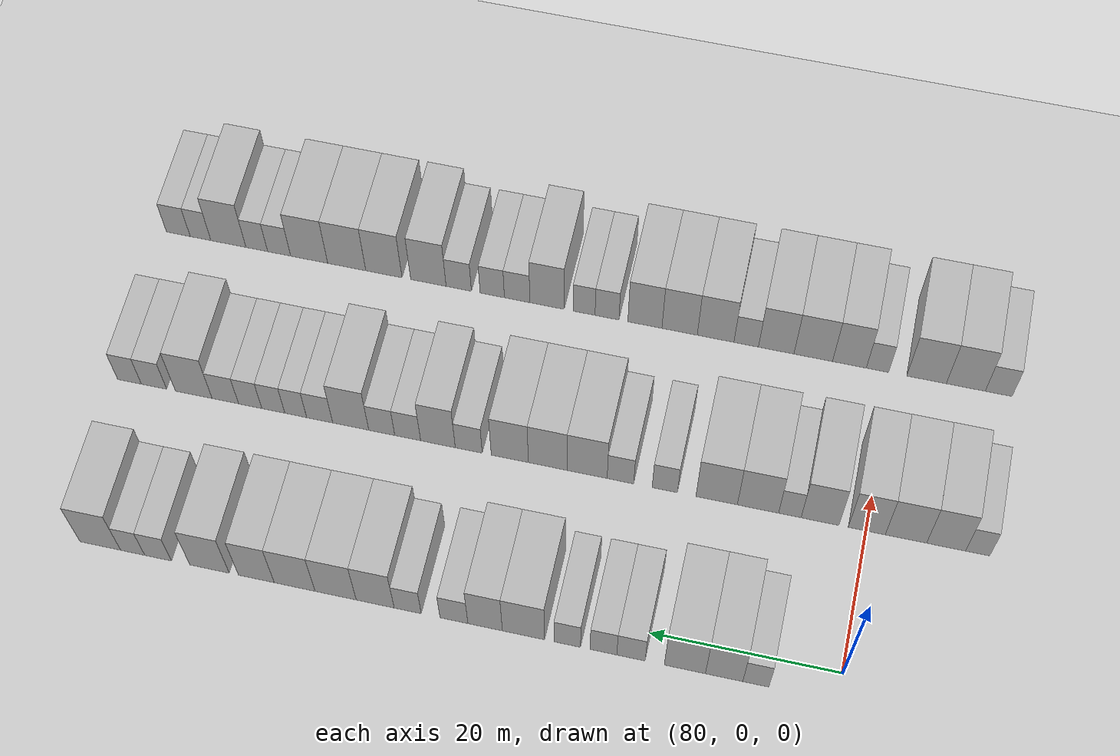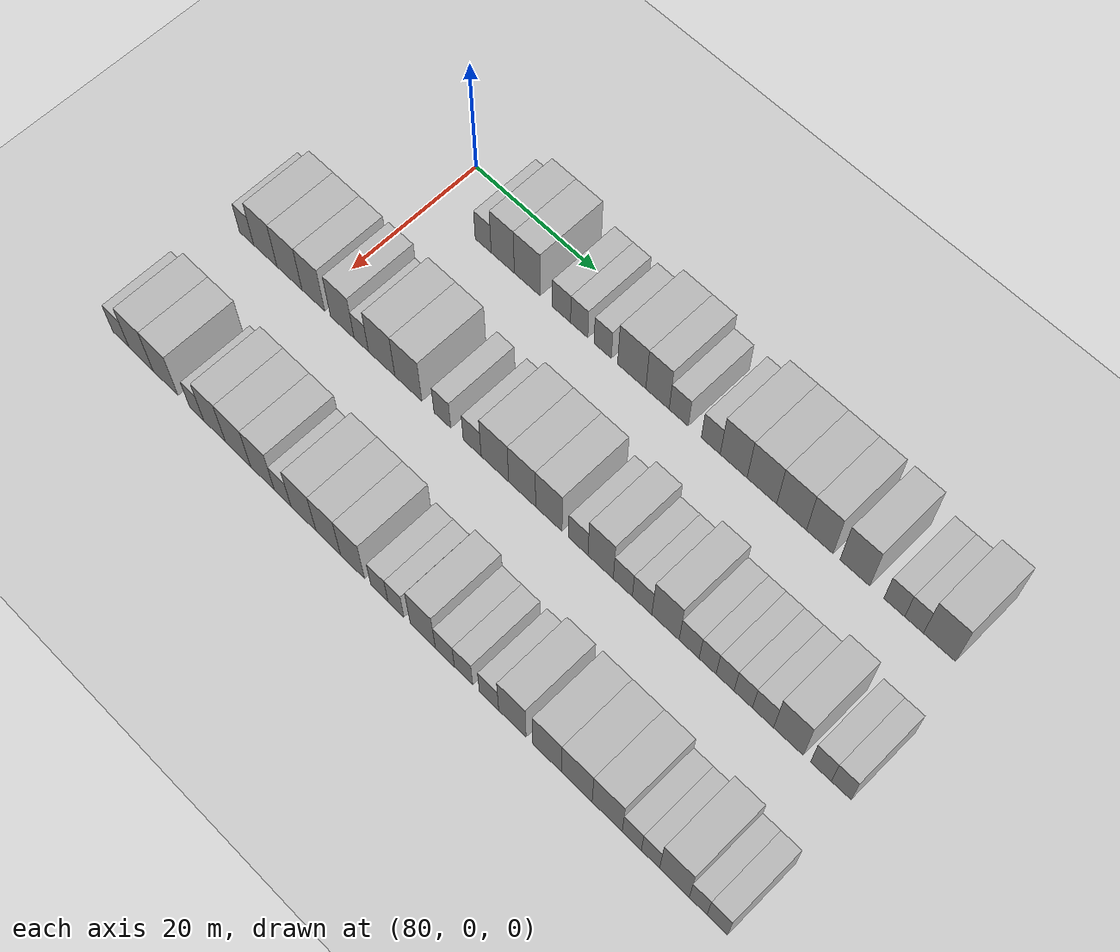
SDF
<sdf version="1.6">
 <world name="default">
  <include>
   <name>ground_plane_2</name>
   <uri>model://HANNAS_ground_plane</uri>
   <pose>100 0 0  0 0 0</pose>
  </include>
  <model name="building_612">
   <static>1</static>
   <pose>82.0000 8.4522 0 0.000000 0.000000 0.000000</pose>
   <link name="link">
    <pose>0 0 3.00 0 0 0</pose>
    <collision name="collision"><geometry><box><size>10.0000 2.6888 6.0000</size></box></geometry></collision>
    <visual name="visual">
     <cast_shadows>0</cast_shadows>
     <geometry><box><size>10.0000 2.6888 6.0000</size></box></geometry>
     <material>
      <script>
       <uri>model://HANNAS_wall/materials/scripts</uri>
       <uri>model://HANNAS_wall/materials/textures</uri>
       <name>vrc/HANNAS_wall</name>
      </script>
     </material>
    </visual>
   </link>
  </model>
  <model name="building_613">
   <static>1</static>
   <pose>82.0000 11.7281 0 0.000000 0.000000 0.000000</pose>
   <link name="link">
    <pose>0 0 4.50 0 0 0</pose>
    <collision name="collision"><geometry><box><size>10.0000 3.8630 9.0000</size></box></geometry></collision>
    <visual name="visual">
     <cast_shadows>0</cast_shadows>
     <geometry><box><size>10.0000 3.8630 9.0000</size></box></geometry>
     <material>
      <script>
       <uri>model://HANNAS_wall/materials/scripts</uri>
       <uri>model://HANNAS_wall/materials/textures</uri>
       <name>vrc/HANNAS_wall</name>
      </script>
     </material>
    </visual>
   </link>
  </model>
  <model name="building_614">
   <static>1</static>
   <pose>82.0000 15.7890 0 0.000000 0.000000 0.000000</pose>
   <link name="link">
    <pose>0 0 4.50 0 0 0</pose>
    <collision name="collision"><geometry><box><size>10.0000 4.2587 9.0000</size></box></geometry></collision>
    <visual name="visual">
     <cast_shadows>0</cast_shadows>
     <geometry><box><size>10.0000 4.2587 9.0000</size></box></geometry>
     <material>
      <script>
       <uri>model://HANNAS_wall/materials/scripts</uri>
       <uri>model://HANNAS_wall/materials/textures</uri>
       <name>vrc/HANNAS_wall</name>
      </script>
     </material>
    </visual>
   </link>
  </model>
  <model name="building_615">
   <static>1</static>
   <pose>82.0000 21.3951 0 0.000000 0.000000 0.000000</pose>
   <link name="link">
    <pose>0 0 3.00 0 0 0</pose>
    <collision name="collision"><geometry><box><size>10.0000 2.9534 6.0000</size></box></geometry></collision>
    <visual name="visual">
     <cast_shadows>0</cast_shadows>
     <geometry><box><size>10.0000 2.9534 6.0000</size></box></geometry>
     <material>
      <script>
       <uri>model://HANNAS_wall/materials/scripts</uri>
       <uri>model://HANNAS_wall/materials/textures</uri>
       <name>vrc/HANNAS_wall</name>
      </script>
     </material>
    </visual>
   </link>
  </model>
  <model name="building_616">
   <static>1</static>
   <pose>82.0000 24.2642 0 0.000000 0.000000 0.000000</pose>
   <link name="link">
    <pose>0 0 3.00 0 0 0</pose>
    <collision name="collision"><geometry><box><size>10.0000 2.7849 6.0000</size></box></geometry></collision>
    <visual name="visual">
     <cast_shadows>0</cast_shadows>
     <geometry><box><size>10.0000 2.7849 6.0000</size></box></geometry>
     <material>
      <script>
       <uri>model://HANNAS_wall/materials/scripts</uri>
       <uri>model://HANNAS_wall/materials/textures</uri>
       <name>vrc/HANNAS_wall</name>
      </script>
     </material>
    </visual>
   </link>
  </model>
  <model name="building_617">
   <static>1</static>
   <pose>82.0000 28.0379 0 0.000000 0.000000 0.000000</pose>
   <link name="link">
    <pose>0 0 3.00 0 0 0</pose>
    <collision name="collision"><geometry><box><size>10.0000 2.7624 6.0000</size></box></geometry></collision>
    <visual name="visual">
     <cast_shadows>0</cast_shadows>
     <geometry><box><size>10.0000 2.7624 6.0000</size></box></geometry>
     <material>
      <script>
       <uri>model://HANNAS_wall/materials/scripts</uri>
       <uri>model://HANNAS_wall/materials/textures</uri>
       <name>vrc/HANNAS_wall</name>
      </script>
     </material>
    </visual>
   </link>
  </model>
  <model name="building_618">
   <static>1</static>
   <pose>82.0000 32.6429 0 0.000000 0.000000 0.000000</pose>
   <link name="link">
    <pose>0 0 4.50 0 0 0</pose>
    <collision name="collision"><geometry><box><size>10.0000 4.4476 9.0000</size></box></geometry></collision>
    <visual name="visual">
     <cast_shadows>0</cast_shadows>
     <geometry><box><size>10.0000 4.4476 9.0000</size></box></geometry>
     <material>
      <script>
       <uri>model://HANNAS_wall/materials/scripts</uri>
       <uri>model://HANNAS_wall/materials/textures</uri>
       <name>vrc/HANNAS_wall</name>
      </script>
     </material>
    </visual>
   </link>
  </model>
  <model name="building_619">
   <static>1</static>
   <pose>82.0000 36.6875 0 0.000000 0.000000 0.000000</pose>
   <link name="link">
    <pose>0 0 4.50 0 0 0</pose>
    <collision name="collision"><geometry><box><size>10.0000 3.6415 9.0000</size></box></geometry></collision>
    <visual name="visual">
     <cast_shadows>0</cast_shadows>
     <geometry><box><size>10.0000 3.6415 9.0000</size></box></geometry>
     <material>
      <script>
       <uri>model://HANNAS_wall/materials/scripts</uri>
       <uri>model://HANNAS_wall/materials/textures</uri>
       <name>vrc/HANNAS_wall</name>
      </script>
     </material>
    </visual>
   </link>
  </model>
  <model name="building_620">
   <static>1</static>
   <pose>82.0000 39.9862 0 0.000000 0.000000 0.000000</pose>
   <link name="link">
    <pose>0 0 3.00 0 0 0</pose>
    <collision name="collision"><geometry><box><size>10.0000 2.9561 6.0000</size></box></geometry></collision>
    <visual name="visual">
     <cast_shadows>0</cast_shadows>
     <geometry><box><size>10.0000 2.9561 6.0000</size></box></geometry>
     <material>
      <script>
       <uri>model://HANNAS_wall/materials/scripts</uri>
       <uri>model://HANNAS_wall/materials/textures</uri>
       <name>vrc/HANNAS_wall</name>
      </script>
     </material>
    </visual>
   </link>
  </model>
  <model name="building_621">
   <static>1</static>
   <pose>82.0000 44.9042 0 0.000000 0.000000 0.000000</pose>
   <link name="link">
    <pose>0 0 3.00 0 0 0</pose>
    <collision name="collision"><geometry><box><size>10.0000 2.8798 6.0000</size></box></geometry></collision>
    <visual name="visual">
     <cast_shadows>0</cast_shadows>
     <geometry><box><size>10.0000 2.8798 6.0000</size></box></geometry>
     <material>
      <script>
       <uri>model://HANNAS_wall/materials/scripts</uri>
       <uri>model://HANNAS_wall/materials/textures</uri>
       <name>vrc/HANNAS_wall</name>
      </script>
     </material>
    </visual>
   </link>
  </model>
  <model name="building_622">
   <static>1</static>
   <pose>82.0000 48.3745 0 0.000000 0.000000 0.000000</pose>
   <link name="link">
    <pose>0 0 4.50 0 0 0</pose>
    <collision name="collision"><geometry><box><size>10.0000 4.0608 9.0000</size></box></geometry></collision>
    <visual name="visual">
     <cast_shadows>0</cast_shadows>
     <geometry><box><size>10.0000 4.0608 9.0000</size></box></geometry>
     <material>
      <script>
       <uri>model://HANNAS_wall/materials/scripts</uri>
       <uri>model://HANNAS_wall/materials/textures</uri>
       <name>vrc/HANNAS_wall</name>
      </script>
     </material>
    </visual>
   </link>
  </model>
  <model name="building_623">
   <static>1</static>
   <pose>82.0000 52.6140 0 0.000000 0.000000 0.000000</pose>
   <link name="link">
    <pose>0 0 4.50 0 0 0</pose>
    <collision name="collision"><geometry><box><size>10.0000 4.4183 9.0000</size></box></geometry></collision>
    <visual name="visual">
     <cast_shadows>0</cast_shadows>
     <geometry><box><size>10.0000 4.4183 9.0000</size></box></geometry>
     <material>
      <script>
       <uri>model://HANNAS_wall/materials/scripts</uri>
       <uri>model://HANNAS_wall/materials/textures</uri>
       <name>vrc/HANNAS_wall</name>
      </script>
     </material>
    </visual>
   </link>
  </model>
  <model name="building_624">
   <static>1</static>
   <pose>82.0000 57.0221 0 0.000000 0.000000 0.000000</pose>
   <link name="link">
    <pose>0 0 4.50 0 0 0</pose>
    <collision name="collision"><geometry><box><size>10.0000 4.3977 9.0000</size></box></geometry></collision>
    <visual name="visual">
     <cast_shadows>0</cast_shadows>
     <geometry><box><size>10.0000 4.3977 9.0000</size></box></geometry>
     <material>
      <script>
       <uri>model://HANNAS_wall/materials/scripts</uri>
       <uri>model://HANNAS_wall/materials/textures</uri>
       <name>vrc/HANNAS_wall</name>
      </script>
     </material>
    </visual>
   </link>
  </model>
  <model name="building_625">
   <static>1</static>
   <pose>82.0000 61.1562 0 0.000000 0.000000 0.000000</pose>
   <link name="link">
    <pose>0 0 4.50 0 0 0</pose>
    <collision name="collision"><geometry><box><size>10.0000 3.8706 9.0000</size></box></geometry></collision>
    <visual name="visual">
     <cast_shadows>0</cast_shadows>
     <geometry><box><size>10.0000 3.8706 9.0000</size></box></geometry>
     <material>
      <script>
       <uri>model://HANNAS_wall/materials/scripts</uri>
       <uri>model://HANNAS_wall/materials/textures</uri>
       <name>vrc/HANNAS_wall</name>
      </script>
     </material>
    </visual>
   </link>
  </model>
  <model name="building_626">
   <static>1</static>
   <pose>82.0000 66.2286 0 0.000000 0.000000 0.000000</pose>
   <link name="link">
    <pose>0 0 4.50 0 0 0</pose>
    <collision name="collision"><geometry><box><size>10.0000 4.2742 9.0000</size></box></geometry></collision>
    <visual name="visual">
     <cast_shadows>0</cast_shadows>
     <geometry><box><size>10.0000 4.2742 9.0000</size></box></geometry>
     <material>
      <script>
       <uri>model://HANNAS_wall/materials/scripts</uri>
       <uri>model://HANNAS_wall/materials/textures</uri>
       <name>vrc/HANNAS_wall</name>
      </script>
     </material>
    </visual>
   </link>
  </model>
  <model name="building_627">
   <static>1</static>
   <pose>82.0000 71.8278 0 0.000000 0.000000 0.000000</pose>
   <link name="link">
    <pose>0 0 3.00 0 0 0</pose>
    <collision name="collision"><geometry><box><size>10.0000 2.9242 6.0000</size></box></geometry></collision>
    <visual name="visual">
     <cast_shadows>0</cast_shadows>
     <geometry><box><size>10.0000 2.9242 6.0000</size></box></geometry>
     <material>
      <script>
       <uri>model://HANNAS_wall/materials/scripts</uri>
       <uri>model://HANNAS_wall/materials/textures</uri>
       <name>vrc/HANNAS_wall</name>
      </script>
     </material>
    </visual>
   </link>
  </model>
  <model name="building_628">
   <static>1</static>
   <pose>82.0000 74.6081 0 0.000000 0.000000 0.000000</pose>
   <link name="link">
    <pose>0 0 3.00 0 0 0</pose>
    <collision name="collision"><geometry><box><size>10.0000 2.6364 6.0000</size></box></geometry></collision>
    <visual name="visual">
     <cast_shadows>0</cast_shadows>
     <geometry><box><size>10.0000 2.6364 6.0000</size></box></geometry>
     <material>
      <script>
       <uri>model://HANNAS_wall/materials/scripts</uri>
       <uri>model://HANNAS_wall/materials/textures</uri>
       <name>vrc/HANNAS_wall</name>
      </script>
     </material>
    </visual>
   </link>
  </model>
  <model name="building_629">
   <static>1</static>
   <pose>82.0000 78.1593 0 0.000000 0.000000 0.000000</pose>
   <link name="link">
    <pose>0 0 4.50 0 0 0</pose>
    <collision name="collision"><geometry><box><size>10.0000 4.4660 9.0000</size></box></geometry></collision>
    <visual name="visual">
     <cast_shadows>0</cast_shadows>
     <geometry><box><size>10.0000 4.4660 9.0000</size></box></geometry>
     <material>
      <script>
       <uri>model://HANNAS_wall/materials/scripts</uri>
       <uri>model://HANNAS_wall/materials/textures</uri>
       <name>vrc/HANNAS_wall</name>
      </script>
     </material>
    </visual>
   </link>
  </model>
  <model name="building_788">
   <static>1</static>
   <pose>101.0000 -11.7467 0 0.000000 0.000000 0.000000</pose>
   <link name="link">
    <pose>0 0 3.00 0 0 0</pose>
    <collision name="collision"><geometry><box><size>10.0000 2.5338 6.0000</size></box></geometry></collision>
    <visual name="visual">
     <cast_shadows>0</cast_shadows>
     <geometry><box><size>10.0000 2.5338 6.0000</size></box></geometry>
     <material>
      <script>
       <uri>model://HANNAS_wall/materials/scripts</uri>
       <uri>model://HANNAS_wall/materials/textures</uri>
       <name>vrc/HANNAS_wall</name>
      </script>
     </material>
    </visual>
   </link>
  </model>
  <model name="building_789">
   <static>1</static>
   <pose>101.0000 -8.4242 0 0.000000 0.000000 0.000000</pose>
   <link name="link">
    <pose>0 0 4.50 0 0 0</pose>
    <collision name="collision"><geometry><box><size>10.0000 4.1113 9.0000</size></box></geometry></collision>
    <visual name="visual">
     <cast_shadows>0</cast_shadows>
     <geometry><box><size>10.0000 4.1113 9.0000</size></box></geometry>
     <material>
      <script>
       <uri>model://HANNAS_wall/materials/scripts</uri>
       <uri>model://HANNAS_wall/materials/textures</uri>
       <name>vrc/HANNAS_wall</name>
      </script>
     </material>
    </visual>
   </link>
  </model>
  <model name="building_790">
   <static>1</static>
   <pose>101.0000 -4.1806 0 0.000000 0.000000 0.000000</pose>
   <link name="link">
    <pose>0 0 4.50 0 0 0</pose>
    <collision name="collision"><geometry><box><size>10.0000 4.3757 9.0000</size></box></geometry></collision>
    <visual name="visual">
     <cast_shadows>0</cast_shadows>
     <geometry><box><size>10.0000 4.3757 9.0000</size></box></geometry>
     <material>
      <script>
       <uri>model://HANNAS_wall/materials/scripts</uri>
       <uri>model://HANNAS_wall/materials/textures</uri>
       <name>vrc/HANNAS_wall</name>
      </script>
     </material>
    </visual>
   </link>
  </model>
  <model name="building_791">
   <static>1</static>
   <pose>101.0000 -0.0316 0 0.000000 0.000000 0.000000</pose>
   <link name="link">
    <pose>0 0 4.50 0 0 0</pose>
    <collision name="collision"><geometry><box><size>10.0000 3.9223 9.0000</size></box></geometry></collision>
    <visual name="visual">
     <cast_shadows>0</cast_shadows>
     <geometry><box><size>10.0000 3.9223 9.0000</size></box></geometry>
     <material>
      <script>
       <uri>model://HANNAS_wall/materials/scripts</uri>
       <uri>model://HANNAS_wall/materials/textures</uri>
       <name>vrc/HANNAS_wall</name>
      </script>
     </material>
    </visual>
   </link>
  </model>
  <model name="building_792">
   <static>1</static>
   <pose>101.0000 4.9466 0 0.000000 0.000000 0.000000</pose>
   <link name="link">
    <pose>0 0 4.50 0 0 0</pose>
    <collision name="collision"><geometry><box><size>10.0000 4.0341 9.0000</size></box></geometry></collision>
    <visual name="visual">
     <cast_shadows>0</cast_shadows>
     <geometry><box><size>10.0000 4.0341 9.0000</size></box></geometry>
     <material>
      <script>
       <uri>model://HANNAS_wall/materials/scripts</uri>
       <uri>model://HANNAS_wall/materials/textures</uri>
       <name>vrc/HANNAS_wall</name>
      </script>
     </material>
    </visual>
   </link>
  </model>
  <model name="building_793">
   <static>1</static>
   <pose>101.0000 8.1683 0 0.000000 0.000000 0.000000</pose>
   <link name="link">
    <pose>0 0 3.00 0 0 0</pose>
    <collision name="collision"><geometry><box><size>10.0000 2.4094 6.0000</size></box></geometry></collision>
    <visual name="visual">
     <cast_shadows>0</cast_shadows>
     <geometry><box><size>10.0000 2.4094 6.0000</size></box></geometry>
     <material>
      <script>
       <uri>model://HANNAS_wall/materials/scripts</uri>
       <uri>model://HANNAS_wall/materials/textures</uri>
       <name>vrc/HANNAS_wall</name>
      </script>
     </material>
    </visual>
   </link>
  </model>
  <model name="building_794">
   <static>1</static>
   <pose>101.0000 11.5841 0 0.000000 0.000000 0.000000</pose>
   <link name="link">
    <pose>0 0 4.50 0 0 0</pose>
    <collision name="collision"><geometry><box><size>10.0000 4.4220 9.0000</size></box></geometry></collision>
    <visual name="visual">
     <cast_shadows>0</cast_shadows>
     <geometry><box><size>10.0000 4.4220 9.0000</size></box></geometry>
     <material>
      <script>
       <uri>model://HANNAS_wall/materials/scripts</uri>
       <uri>model://HANNAS_wall/materials/textures</uri>
       <name>vrc/HANNAS_wall</name>
      </script>
     </material>
    </visual>
   </link>
  </model>
  <model name="building_795">
   <static>1</static>
   <pose>101.0000 16.0269 0 0.000000 0.000000 0.000000</pose>
   <link name="link">
    <pose>0 0 4.50 0 0 0</pose>
    <collision name="collision"><geometry><box><size>10.0000 4.4636 9.0000</size></box></geometry></collision>
    <visual name="visual">
     <cast_shadows>0</cast_shadows>
     <geometry><box><size>10.0000 4.4636 9.0000</size></box></geometry>
     <material>
      <script>
       <uri>model://HANNAS_wall/materials/scripts</uri>
       <uri>model://HANNAS_wall/materials/textures</uri>
       <name>vrc/HANNAS_wall</name>
      </script>
     </material>
    </visual>
   </link>
  </model>
  <model name="building_796">
   <static>1</static>
   <pose>101.0000 21.6288 0 0.000000 0.000000 0.000000</pose>
   <link name="link">
    <pose>0 0 3.00 0 0 0</pose>
    <collision name="collision"><geometry><box><size>10.0000 2.7401 6.0000</size></box></geometry></collision>
    <visual name="visual">
     <cast_shadows>0</cast_shadows>
     <geometry><box><size>10.0000 2.7401 6.0000</size></box></geometry>
     <material>
      <script>
       <uri>model://HANNAS_wall/materials/scripts</uri>
       <uri>model://HANNAS_wall/materials/textures</uri>
       <name>vrc/HANNAS_wall</name>
      </script>
     </material>
    </visual>
   </link>
  </model>
  <model name="building_797">
   <static>1</static>
   <pose>101.0000 26.4400 0 0.000000 0.000000 0.000000</pose>
   <link name="link">
    <pose>0 0 3.00 0 0 0</pose>
    <collision name="collision"><geometry><box><size>10.0000 2.8825 6.0000</size></box></geometry></collision>
    <visual name="visual">
     <cast_shadows>0</cast_shadows>
     <geometry><box><size>10.0000 2.8825 6.0000</size></box></geometry>
     <material>
      <script>
       <uri>model://HANNAS_wall/materials/scripts</uri>
       <uri>model://HANNAS_wall/materials/textures</uri>
       <name>vrc/HANNAS_wall</name>
      </script>
     </material>
    </visual>
   </link>
  </model>
  <model name="building_798">
   <static>1</static>
   <pose>101.0000 30.0633 0 0.000000 0.000000 0.000000</pose>
   <link name="link">
    <pose>0 0 4.50 0 0 0</pose>
    <collision name="collision"><geometry><box><size>10.0000 4.3641 9.0000</size></box></geometry></collision>
    <visual name="visual">
     <cast_shadows>0</cast_shadows>
     <geometry><box><size>10.0000 4.3641 9.0000</size></box></geometry>
     <material>
      <script>
       <uri>model://HANNAS_wall/materials/scripts</uri>
       <uri>model://HANNAS_wall/materials/textures</uri>
       <name>vrc/HANNAS_wall</name>
      </script>
     </material>
    </visual>
   </link>
  </model>
  <model name="building_799">
   <static>1</static>
   <pose>101.0000 34.3633 0 0.000000 0.000000 0.000000</pose>
   <link name="link">
    <pose>0 0 4.50 0 0 0</pose>
    <collision name="collision"><geometry><box><size>10.0000 4.2359 9.0000</size></box></geometry></collision>
    <visual name="visual">
     <cast_shadows>0</cast_shadows>
     <geometry><box><size>10.0000 4.2359 9.0000</size></box></geometry>
     <material>
      <script>
       <uri>model://HANNAS_wall/materials/scripts</uri>
       <uri>model://HANNAS_wall/materials/textures</uri>
       <name>vrc/HANNAS_wall</name>
      </script>
     </material>
    </visual>
   </link>
  </model>
  <model name="building_800">
   <static>1</static>
   <pose>101.0000 38.5232 0 0.000000 0.000000 0.000000</pose>
   <link name="link">
    <pose>0 0 4.50 0 0 0</pose>
    <collision name="collision"><geometry><box><size>10.0000 4.0839 9.0000</size></box></geometry></collision>
    <visual name="visual">
     <cast_shadows>0</cast_shadows>
     <geometry><box><size>10.0000 4.0839 9.0000</size></box></geometry>
     <material>
      <script>
       <uri>model://HANNAS_wall/materials/scripts</uri>
       <uri>model://HANNAS_wall/materials/textures</uri>
       <name>vrc/HANNAS_wall</name>
      </script>
     </material>
    </visual>
   </link>
  </model>
  <model name="building_801">
   <static>1</static>
   <pose>101.0000 43.0505 0 0.000000 0.000000 0.000000</pose>
   <link name="link">
    <pose>0 0 3.00 0 0 0</pose>
    <collision name="collision"><geometry><box><size>10.0000 2.9705 6.0000</size></box></geometry></collision>
    <visual name="visual">
     <cast_shadows>0</cast_shadows>
     <geometry><box><size>10.0000 2.9705 6.0000</size></box></geometry>
     <material>
      <script>
       <uri>model://HANNAS_wall/materials/scripts</uri>
       <uri>model://HANNAS_wall/materials/textures</uri>
       <name>vrc/HANNAS_wall</name>
      </script>
     </material>
    </visual>
   </link>
  </model>
  <model name="building_802">
   <static>1</static>
   <pose>101.0000 46.4548 0 0.000000 0.000000 0.000000</pose>
   <link name="link">
    <pose>0 0 4.50 0 0 0</pose>
    <collision name="collision"><geometry><box><size>10.0000 3.8382 9.0000</size></box></geometry></collision>
    <visual name="visual">
     <cast_shadows>0</cast_shadows>
     <geometry><box><size>10.0000 3.8382 9.0000</size></box></geometry>
     <material>
      <script>
       <uri>model://HANNAS_wall/materials/scripts</uri>
       <uri>model://HANNAS_wall/materials/textures</uri>
       <name>vrc/HANNAS_wall</name>
      </script>
     </material>
    </visual>
   </link>
  </model>
  <model name="building_803">
   <static>1</static>
   <pose>101.0000 49.8082 0 0.000000 0.000000 0.000000</pose>
   <link name="link">
    <pose>0 0 3.00 0 0 0</pose>
    <collision name="collision"><geometry><box><size>10.0000 2.8686 6.0000</size></box></geometry></collision>
    <visual name="visual">
     <cast_shadows>0</cast_shadows>
     <geometry><box><size>10.0000 2.8686 6.0000</size></box></geometry>
     <material>
      <script>
       <uri>model://HANNAS_wall/materials/scripts</uri>
       <uri>model://HANNAS_wall/materials/textures</uri>
       <name>vrc/HANNAS_wall</name>
      </script>
     </material>
    </visual>
   </link>
  </model>
  <model name="building_804">
   <static>1</static>
   <pose>101.0000 52.6882 0 0.000000 0.000000 0.000000</pose>
   <link name="link">
    <pose>0 0 3.00 0 0 0</pose>
    <collision name="collision"><geometry><box><size>10.0000 2.8915 6.0000</size></box></geometry></collision>
    <visual name="visual">
     <cast_shadows>0</cast_shadows>
     <geometry><box><size>10.0000 2.8915 6.0000</size></box></geometry>
     <material>
      <script>
       <uri>model://HANNAS_wall/materials/scripts</uri>
       <uri>model://HANNAS_wall/materials/textures</uri>
       <name>vrc/HANNAS_wall</name>
      </script>
     </material>
    </visual>
   </link>
  </model>
  <model name="building_805">
   <static>1</static>
   <pose>101.0000 56.1517 0 0.000000 0.000000 0.000000</pose>
   <link name="link">
    <pose>0 0 4.50 0 0 0</pose>
    <collision name="collision"><geometry><box><size>10.0000 4.0355 9.0000</size></box></geometry></collision>
    <visual name="visual">
     <cast_shadows>0</cast_shadows>
     <geometry><box><size>10.0000 4.0355 9.0000</size></box></geometry>
     <material>
      <script>
       <uri>model://HANNAS_wall/materials/scripts</uri>
       <uri>model://HANNAS_wall/materials/textures</uri>
       <name>vrc/HANNAS_wall</name>
      </script>
     </material>
    </visual>
   </link>
  </model>
  <model name="building_806">
   <static>1</static>
   <pose>101.0000 59.6257 0 0.000000 0.000000 0.000000</pose>
   <link name="link">
    <pose>0 0 3.00 0 0 0</pose>
    <collision name="collision"><geometry><box><size>10.0000 2.9125 6.0000</size></box></geometry></collision>
    <visual name="visual">
     <cast_shadows>0</cast_shadows>
     <geometry><box><size>10.0000 2.9125 6.0000</size></box></geometry>
     <material>
      <script>
       <uri>model://HANNAS_wall/materials/scripts</uri>
       <uri>model://HANNAS_wall/materials/textures</uri>
       <name>vrc/HANNAS_wall</name>
      </script>
     </material>
    </visual>
   </link>
  </model>
  <model name="building_807">
   <static>1</static>
   <pose>101.0000 62.3129 0 0.000000 0.000000 0.000000</pose>
   <link name="link">
    <pose>0 0 3.00 0 0 0</pose>
    <collision name="collision"><geometry><box><size>10.0000 2.4618 6.0000</size></box></geometry></collision>
    <visual name="visual">
     <cast_shadows>0</cast_shadows>
     <geometry><box><size>10.0000 2.4618 6.0000</size></box></geometry>
     <material>
      <script>
       <uri>model://HANNAS_wall/materials/scripts</uri>
       <uri>model://HANNAS_wall/materials/textures</uri>
       <name>vrc/HANNAS_wall</name>
      </script>
     </material>
    </visual>
   </link>
  </model>
  <model name="building_808">
   <static>1</static>
   <pose>101.0000 64.8359 0 0.000000 0.000000 0.000000</pose>
   <link name="link">
    <pose>0 0 3.00 0 0 0</pose>
    <collision name="collision"><geometry><box><size>10.0000 2.5842 6.0000</size></box></geometry></collision>
    <visual name="visual">
     <cast_shadows>0</cast_shadows>
     <geometry><box><size>10.0000 2.5842 6.0000</size></box></geometry>
     <material>
      <script>
       <uri>model://HANNAS_wall/materials/scripts</uri>
       <uri>model://HANNAS_wall/materials/textures</uri>
       <name>vrc/HANNAS_wall</name>
      </script>
     </material>
    </visual>
   </link>
  </model>
  <model name="building_809">
   <static>1</static>
   <pose>101.0000 67.4386 0 0.000000 0.000000 0.000000</pose>
   <link name="link">
    <pose>0 0 3.00 0 0 0</pose>
    <collision name="collision"><geometry><box><size>10.0000 2.6211 6.0000</size></box></geometry></collision>
    <visual name="visual">
     <cast_shadows>0</cast_shadows>
     <geometry><box><size>10.0000 2.6211 6.0000</size></box></geometry>
     <material>
      <script>
       <uri>model://HANNAS_wall/materials/scripts</uri>
       <uri>model://HANNAS_wall/materials/textures</uri>
       <name>vrc/HANNAS_wall</name>
      </script>
     </material>
    </visual>
   </link>
  </model>
  <model name="building_810">
   <static>1</static>
   <pose>101.0000 70.2480 0 0.000000 0.000000 0.000000</pose>
   <link name="link">
    <pose>0 0 3.00 0 0 0</pose>
    <collision name="collision"><geometry><box><size>10.0000 2.9977 6.0000</size></box></geometry></collision>
    <visual name="visual">
     <cast_shadows>0</cast_shadows>
     <geometry><box><size>10.0000 2.9977 6.0000</size></box></geometry>
     <material>
      <script>
       <uri>model://HANNAS_wall/materials/scripts</uri>
       <uri>model://HANNAS_wall/materials/textures</uri>
       <name>vrc/HANNAS_wall</name>
      </script>
     </material>
    </visual>
   </link>
  </model>
  <model name="building_811">
   <static>1</static>
   <pose>101.0000 73.8276 0 0.000000 0.000000 0.000000</pose>
   <link name="link">
    <pose>0 0 4.50 0 0 0</pose>
    <collision name="collision"><geometry><box><size>10.0000 4.1614 9.0000</size></box></geometry></collision>
    <visual name="visual">
     <cast_shadows>0</cast_shadows>
     <geometry><box><size>10.0000 4.1614 9.0000</size></box></geometry>
     <material>
      <script>
       <uri>model://HANNAS_wall/materials/scripts</uri>
       <uri>model://HANNAS_wall/materials/textures</uri>
       <name>vrc/HANNAS_wall</name>
      </script>
     </material>
    </visual>
   </link>
  </model>
  <model name="building_812">
   <static>1</static>
   <pose>101.0000 78.3442 0 0.000000 0.000000 0.000000</pose>
   <link name="link">
    <pose>0 0 3.00 0 0 0</pose>
    <collision name="collision"><geometry><box><size>10.0000 2.8718 6.0000</size></box></geometry></collision>
    <visual name="visual">
     <cast_shadows>0</cast_shadows>
     <geometry><box><size>10.0000 2.8718 6.0000</size></box></geometry>
     <material>
      <script>
       <uri>model://HANNAS_wall/materials/scripts</uri>
       <uri>model://HANNAS_wall/materials/textures</uri>
       <name>vrc/HANNAS_wall</name>
      </script>
     </material>
    </visual>
   </link>
  </model>
  <model name="building_813">
   <static>1</static>
   <pose>101.0000 81.1378 0 0.000000 0.000000 0.000000</pose>
   <link name="link">
    <pose>0 0 3.00 0 0 0</pose>
    <collision name="collision"><geometry><box><size>10.0000 2.7154 6.0000</size></box></geometry></collision>
    <visual name="visual">
     <cast_shadows>0</cast_shadows>
     <geometry><box><size>10.0000 2.7154 6.0000</size></box></geometry>
     <material>
      <script>
       <uri>model://HANNAS_wall/materials/scripts</uri>
       <uri>model://HANNAS_wall/materials/textures</uri>
       <name>vrc/HANNAS_wall</name>
      </script>
     </material>
    </visual>
   </link>
  </model>
  <model name="building_966">
   <static>1</static>
   <pose>120.0000 -11.6476 0 0.000000 0.000000 0.000000</pose>
   <link name="link">
    <pose>0 0 3.00 0 0 0</pose>
    <collision name="collision"><geometry><box><size>10.0000 2.9346 6.0000</size></box></geometry></collision>
    <visual name="visual">
     <cast_shadows>0</cast_shadows>
     <geometry><box><size>10.0000 2.9346 6.0000</size></box></geometry>
     <material>
      <script>
       <uri>model://HANNAS_wall/materials/scripts</uri>
       <uri>model://HANNAS_wall/materials/textures</uri>
       <name>vrc/HANNAS_wall</name>
      </script>
     </material>
    </visual>
   </link>
  </model>
  <model name="building_967">
   <static>1</static>
   <pose>120.0000 -8.0524 0 0.000000 0.000000 0.000000</pose>
   <link name="link">
    <pose>0 0 4.50 0 0 0</pose>
    <collision name="collision"><geometry><box><size>10.0000 4.2559 9.0000</size></box></geometry></collision>
    <visual name="visual">
     <cast_shadows>0</cast_shadows>
     <geometry><box><size>10.0000 4.2559 9.0000</size></box></geometry>
     <material>
      <script>
       <uri>model://HANNAS_wall/materials/scripts</uri>
       <uri>model://HANNAS_wall/materials/textures</uri>
       <name>vrc/HANNAS_wall</name>
      </script>
     </material>
    </visual>
   </link>
  </model>
  <model name="building_968">
   <static>1</static>
   <pose>120.0000 -3.7504 0 0.000000 0.000000 0.000000</pose>
   <link name="link">
    <pose>0 0 4.50 0 0 0</pose>
    <collision name="collision"><geometry><box><size>10.0000 4.3481 9.0000</size></box></geometry></collision>
    <visual name="visual">
     <cast_shadows>0</cast_shadows>
     <geometry><box><size>10.0000 4.3481 9.0000</size></box></geometry>
     <material>
      <script>
       <uri>model://HANNAS_wall/materials/scripts</uri>
       <uri>model://HANNAS_wall/materials/textures</uri>
       <name>vrc/HANNAS_wall</name>
      </script>
     </material>
    </visual>
   </link>
  </model>
  <model name="building_969">
   <static>1</static>
   <pose>120.0000 1.6539 0 0.000000 0.000000 0.000000</pose>
   <link name="link">
    <pose>0 0 3.00 0 0 0</pose>
    <collision name="collision"><geometry><box><size>10.0000 2.4603 6.0000</size></box></geometry></collision>
    <visual name="visual">
     <cast_shadows>0</cast_shadows>
     <geometry><box><size>10.0000 2.4603 6.0000</size></box></geometry>
     <material>
      <script>
       <uri>model://HANNAS_wall/materials/scripts</uri>
       <uri>model://HANNAS_wall/materials/textures</uri>
       <name>vrc/HANNAS_wall</name>
      </script>
     </material>
    </visual>
   </link>
  </model>
  <model name="building_970">
   <static>1</static>
   <pose>120.0000 4.7565 0 0.000000 0.000000 0.000000</pose>
   <link name="link">
    <pose>0 0 4.50 0 0 0</pose>
    <collision name="collision"><geometry><box><size>10.0000 3.7449 9.0000</size></box></geometry></collision>
    <visual name="visual">
     <cast_shadows>0</cast_shadows>
     <geometry><box><size>10.0000 3.7449 9.0000</size></box></geometry>
     <material>
      <script>
       <uri>model://HANNAS_wall/materials/scripts</uri>
       <uri>model://HANNAS_wall/materials/textures</uri>
       <name>vrc/HANNAS_wall</name>
      </script>
     </material>
    </visual>
   </link>
  </model>
  <model name="building_971">
   <static>1</static>
   <pose>120.0000 8.7693 0 0.000000 0.000000 0.000000</pose>
   <link name="link">
    <pose>0 0 4.50 0 0 0</pose>
    <collision name="collision"><geometry><box><size>10.0000 4.2808 9.0000</size></box></geometry></collision>
    <visual name="visual">
     <cast_shadows>0</cast_shadows>
     <geometry><box><size>10.0000 4.2808 9.0000</size></box></geometry>
     <material>
      <script>
       <uri>model://HANNAS_wall/materials/scripts</uri>
       <uri>model://HANNAS_wall/materials/textures</uri>
       <name>vrc/HANNAS_wall</name>
      </script>
     </material>
    </visual>
   </link>
  </model>
  <model name="building_972">
   <static>1</static>
   <pose>120.0000 12.8876 0 0.000000 0.000000 0.000000</pose>
   <link name="link">
    <pose>0 0 4.50 0 0 0</pose>
    <collision name="collision"><geometry><box><size>10.0000 3.9557 9.0000</size></box></geometry></collision>
    <visual name="visual">
     <cast_shadows>0</cast_shadows>
     <geometry><box><size>10.0000 3.9557 9.0000</size></box></geometry>
     <material>
      <script>
       <uri>model://HANNAS_wall/materials/scripts</uri>
       <uri>model://HANNAS_wall/materials/textures</uri>
       <name>vrc/HANNAS_wall</name>
      </script>
     </material>
    </visual>
   </link>
  </model>
  <model name="building_973">
   <static>1</static>
   <pose>120.0000 16.2359 0 0.000000 0.000000 0.000000</pose>
   <link name="link">
    <pose>0 0 3.00 0 0 0</pose>
    <collision name="collision"><geometry><box><size>10.0000 2.7408 6.0000</size></box></geometry></collision>
    <visual name="visual">
     <cast_shadows>0</cast_shadows>
     <geometry><box><size>10.0000 2.7408 6.0000</size></box></geometry>
     <material>
      <script>
       <uri>model://HANNAS_wall/materials/scripts</uri>
       <uri>model://HANNAS_wall/materials/textures</uri>
       <name>vrc/HANNAS_wall</name>
      </script>
     </material>
    </visual>
   </link>
  </model>
  <model name="building_974">
   <static>1</static>
   <pose>120.0000 19.6628 0 0.000000 0.000000 0.000000</pose>
   <link name="link">
    <pose>0 0 4.50 0 0 0</pose>
    <collision name="collision"><geometry><box><size>10.0000 4.1131 9.0000</size></box></geometry></collision>
    <visual name="visual">
     <cast_shadows>0</cast_shadows>
     <geometry><box><size>10.0000 4.1131 9.0000</size></box></geometry>
     <material>
      <script>
       <uri>model://HANNAS_wall/materials/scripts</uri>
       <uri>model://HANNAS_wall/materials/textures</uri>
       <name>vrc/HANNAS_wall</name>
      </script>
     </material>
    </visual>
   </link>
  </model>
  <model name="building_975">
   <static>1</static>
   <pose>120.0000 23.7107 0 0.000000 0.000000 0.000000</pose>
   <link name="link">
    <pose>0 0 4.50 0 0 0</pose>
    <collision name="collision"><geometry><box><size>10.0000 3.9827 9.0000</size></box></geometry></collision>
    <visual name="visual">
     <cast_shadows>0</cast_shadows>
     <geometry><box><size>10.0000 3.9827 9.0000</size></box></geometry>
     <material>
      <script>
       <uri>model://HANNAS_wall/materials/scripts</uri>
       <uri>model://HANNAS_wall/materials/textures</uri>
       <name>vrc/HANNAS_wall</name>
      </script>
     </material>
    </visual>
   </link>
  </model>
  <model name="building_976">
   <static>1</static>
   <pose>120.0000 27.6254 0 0.000000 0.000000 0.000000</pose>
   <link name="link">
    <pose>0 0 4.50 0 0 0</pose>
    <collision name="collision"><geometry><box><size>10.0000 3.8466 9.0000</size></box></geometry></collision>
    <visual name="visual">
     <cast_shadows>0</cast_shadows>
     <geometry><box><size>10.0000 3.8466 9.0000</size></box></geometry>
     <material>
      <script>
       <uri>model://HANNAS_wall/materials/scripts</uri>
       <uri>model://HANNAS_wall/materials/textures</uri>
       <name>vrc/HANNAS_wall</name>
      </script>
     </material>
    </visual>
   </link>
  </model>
  <model name="building_977">
   <static>1</static>
   <pose>120.0000 31.9056 0 0.000000 0.000000 0.000000</pose>
   <link name="link">
    <pose>0 0 3.00 0 0 0</pose>
    <collision name="collision"><geometry><box><size>10.0000 2.7137 6.0000</size></box></geometry></collision>
    <visual name="visual">
     <cast_shadows>0</cast_shadows>
     <geometry><box><size>10.0000 2.7137 6.0000</size></box></geometry>
     <material>
      <script>
       <uri>model://HANNAS_wall/materials/scripts</uri>
       <uri>model://HANNAS_wall/materials/textures</uri>
       <name>vrc/HANNAS_wall</name>
      </script>
     </material>
    </visual>
   </link>
  </model>
  <model name="building_978">
   <static>1</static>
   <pose>120.0000 34.5085 0 0.000000 0.000000 0.000000</pose>
   <link name="link">
    <pose>0 0 3.00 0 0 0</pose>
    <collision name="collision"><geometry><box><size>10.0000 2.4922 6.0000</size></box></geometry></collision>
    <visual name="visual">
     <cast_shadows>0</cast_shadows>
     <geometry><box><size>10.0000 2.4922 6.0000</size></box></geometry>
     <material>
      <script>
       <uri>model://HANNAS_wall/materials/scripts</uri>
       <uri>model://HANNAS_wall/materials/textures</uri>
       <name>vrc/HANNAS_wall</name>
      </script>
     </material>
    </visual>
   </link>
  </model>
  <model name="building_979">
   <static>1</static>
   <pose>120.0000 38.7099 0 0.000000 0.000000 0.000000</pose>
   <link name="link">
    <pose>0 0 4.50 0 0 0</pose>
    <collision name="collision"><geometry><box><size>10.0000 3.9106 9.0000</size></box></geometry></collision>
    <visual name="visual">
     <cast_shadows>0</cast_shadows>
     <geometry><box><size>10.0000 3.9106 9.0000</size></box></geometry>
     <material>
      <script>
       <uri>model://HANNAS_wall/materials/scripts</uri>
       <uri>model://HANNAS_wall/materials/textures</uri>
       <name>vrc/HANNAS_wall</name>
      </script>
     </material>
    </visual>
   </link>
  </model>
  <model name="building_980">
   <static>1</static>
   <pose>120.0000 42.1282 0 0.000000 0.000000 0.000000</pose>
   <link name="link">
    <pose>0 0 3.00 0 0 0</pose>
    <collision name="collision"><geometry><box><size>10.0000 2.9260 6.0000</size></box></geometry></collision>
    <visual name="visual">
     <cast_shadows>0</cast_shadows>
     <geometry><box><size>10.0000 2.9260 6.0000</size></box></geometry>
     <material>
      <script>
       <uri>model://HANNAS_wall/materials/scripts</uri>
       <uri>model://HANNAS_wall/materials/textures</uri>
       <name>vrc/HANNAS_wall</name>
      </script>
     </material>
    </visual>
   </link>
  </model>
  <model name="building_981">
   <static>1</static>
   <pose>120.0000 44.9802 0 0.000000 0.000000 0.000000</pose>
   <link name="link">
    <pose>0 0 3.00 0 0 0</pose>
    <collision name="collision"><geometry><box><size>10.0000 2.7780 6.0000</size></box></geometry></collision>
    <visual name="visual">
     <cast_shadows>0</cast_shadows>
     <geometry><box><size>10.0000 2.7780 6.0000</size></box></geometry>
     <material>
      <script>
       <uri>model://HANNAS_wall/materials/scripts</uri>
       <uri>model://HANNAS_wall/materials/textures</uri>
       <name>vrc/HANNAS_wall</name>
      </script>
     </material>
    </visual>
   </link>
  </model>
  <model name="building_982">
   <static>1</static>
   <pose>120.0000 48.8260 0 0.000000 0.000000 0.000000</pose>
   <link name="link">
    <pose>0 0 3.00 0 0 0</pose>
    <collision name="collision"><geometry><box><size>10.0000 2.9135 6.0000</size></box></geometry></collision>
    <visual name="visual">
     <cast_shadows>0</cast_shadows>
     <geometry><box><size>10.0000 2.9135 6.0000</size></box></geometry>
     <material>
      <script>
       <uri>model://HANNAS_wall/materials/scripts</uri>
       <uri>model://HANNAS_wall/materials/textures</uri>
       <name>vrc/HANNAS_wall</name>
      </script>
     </material>
    </visual>
   </link>
  </model>
  <model name="building_983">
   <static>1</static>
   <pose>120.0000 52.3243 0 0.000000 0.000000 0.000000</pose>
   <link name="link">
    <pose>0 0 4.50 0 0 0</pose>
    <collision name="collision"><geometry><box><size>10.0000 4.0832 9.0000</size></box></geometry></collision>
    <visual name="visual">
     <cast_shadows>0</cast_shadows>
     <geometry><box><size>10.0000 4.0832 9.0000</size></box></geometry>
     <material>
      <script>
       <uri>model://HANNAS_wall/materials/scripts</uri>
       <uri>model://HANNAS_wall/materials/textures</uri>
       <name>vrc/HANNAS_wall</name>
      </script>
     </material>
    </visual>
   </link>
  </model>
  <model name="building_984">
   <static>1</static>
   <pose>120.0000 57.4685 0 0.000000 0.000000 0.000000</pose>
   <link name="link">
    <pose>0 0 4.50 0 0 0</pose>
    <collision name="collision"><geometry><box><size>10.0000 4.2052 9.0000</size></box></geometry></collision>
    <visual name="visual">
     <cast_shadows>0</cast_shadows>
     <geometry><box><size>10.0000 4.2052 9.0000</size></box></geometry>
     <material>
      <script>
       <uri>model://HANNAS_wall/materials/scripts</uri>
       <uri>model://HANNAS_wall/materials/textures</uri>
       <name>vrc/HANNAS_wall</name>
      </script>
     </material>
    </visual>
   </link>
  </model>
  <model name="building_985">
   <static>1</static>
   <pose>120.0000 61.7849 0 0.000000 0.000000 0.000000</pose>
   <link name="link">
    <pose>0 0 4.50 0 0 0</pose>
    <collision name="collision"><geometry><box><size>10.0000 4.4275 9.0000</size></box></geometry></collision>
    <visual name="visual">
     <cast_shadows>0</cast_shadows>
     <geometry><box><size>10.0000 4.4275 9.0000</size></box></geometry>
     <material>
      <script>
       <uri>model://HANNAS_wall/materials/scripts</uri>
       <uri>model://HANNAS_wall/materials/textures</uri>
       <name>vrc/HANNAS_wall</name>
      </script>
     </material>
    </visual>
   </link>
  </model>
  <model name="building_986">
   <static>1</static>
   <pose>120.0000 66.1544 0 0.000000 0.000000 0.000000</pose>
   <link name="link">
    <pose>0 0 4.50 0 0 0</pose>
    <collision name="collision"><geometry><box><size>10.0000 4.3116 9.0000</size></box></geometry></collision>
    <visual name="visual">
     <cast_shadows>0</cast_shadows>
     <geometry><box><size>10.0000 4.3116 9.0000</size></box></geometry>
     <material>
      <script>
       <uri>model://HANNAS_wall/materials/scripts</uri>
       <uri>model://HANNAS_wall/materials/textures</uri>
       <name>vrc/HANNAS_wall</name>
      </script>
     </material>
    </visual>
   </link>
  </model>
  <model name="building_987">
   <static>1</static>
   <pose>120.0000 69.6622 0 0.000000 0.000000 0.000000</pose>
   <link name="link">
    <pose>0 0 3.00 0 0 0</pose>
    <collision name="collision"><geometry><box><size>10.0000 2.7041 6.0000</size></box></geometry></collision>
    <visual name="visual">
     <cast_shadows>0</cast_shadows>
     <geometry><box><size>10.0000 2.7041 6.0000</size></box></geometry>
     <material>
      <script>
       <uri>model://HANNAS_wall/materials/scripts</uri>
       <uri>model://HANNAS_wall/materials/textures</uri>
       <name>vrc/HANNAS_wall</name>
      </script>
     </material>
    </visual>
   </link>
  </model>
  <model name="building_988">
   <static>1</static>
   <pose>120.0000 72.2885 0 0.000000 0.000000 0.000000</pose>
   <link name="link">
    <pose>0 0 3.00 0 0 0</pose>
    <collision name="collision"><geometry><box><size>10.0000 2.5485 6.0000</size></box></geometry></collision>
    <visual name="visual">
     <cast_shadows>0</cast_shadows>
     <geometry><box><size>10.0000 2.5485 6.0000</size></box></geometry>
     <material>
      <script>
       <uri>model://HANNAS_wall/materials/scripts</uri>
       <uri>model://HANNAS_wall/materials/textures</uri>
       <name>vrc/HANNAS_wall</name>
      </script>
     </material>
    </visual>
   </link>
  </model>
  <model name="building_989">
   <static>1</static>
   <pose>120.0000 75.6246 0 0.000000 0.000000 0.000000</pose>
   <link name="link">
    <pose>0 0 4.50 0 0 0</pose>
    <collision name="collision"><geometry><box><size>10.0000 4.1237 9.0000</size></box></geometry></collision>
    <visual name="visual">
     <cast_shadows>0</cast_shadows>
     <geometry><box><size>10.0000 4.1237 9.0000</size></box></geometry>
     <material>
      <script>
       <uri>model://HANNAS_wall/materials/scripts</uri>
       <uri>model://HANNAS_wall/materials/textures</uri>
       <name>vrc/HANNAS_wall</name>
      </script>
     </material>
    </visual>
   </link>
  </model>
  <model name="building_990">
   <static>1</static>
   <pose>120.0000 78.9082 0 0.000000 0.000000 0.000000</pose>
   <link name="link">
    <pose>0 0 3.00 0 0 0</pose>
    <collision name="collision"><geometry><box><size>10.0000 2.4436 6.0000</size></box></geometry></collision>
    <visual name="visual">
     <cast_shadows>0</cast_shadows>
     <geometry><box><size>10.0000 2.4436 6.0000</size></box></geometry>
     <material>
      <script>
       <uri>model://HANNAS_wall/materials/scripts</uri>
       <uri>model://HANNAS_wall/materials/textures</uri>
       <name>vrc/HANNAS_wall</name>
      </script>
     </material>
    </visual>
   </link>
  </model>
  <model name="building_991">
   <static>1</static>
   <pose>120.0000 81.5341 0 0.000000 0.000000 0.000000</pose>
   <link name="link">
    <pose>0 0 3.00 0 0 0</pose>
    <collision name="collision"><geometry><box><size>10.0000 2.8080 6.0000</size></box></geometry></collision>
    <visual name="visual">
     <cast_shadows>0</cast_shadows>
     <geometry><box><size>10.0000 2.8080 6.0000</size></box></geometry>
     <material>
      <script>
       <uri>model://HANNAS_wall/materials/scripts</uri>
       <uri>model://HANNAS_wall/materials/textures</uri>
       <name>vrc/HANNAS_wall</name>
      </script>
     </material>
    </visual>
   </link>
  </model>
 </world>
</sdf>
